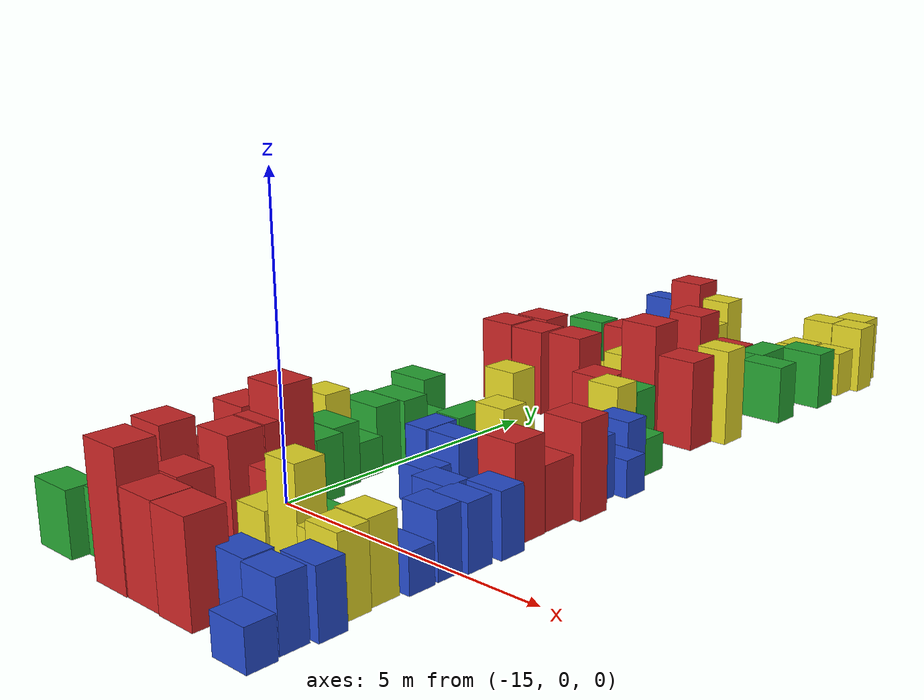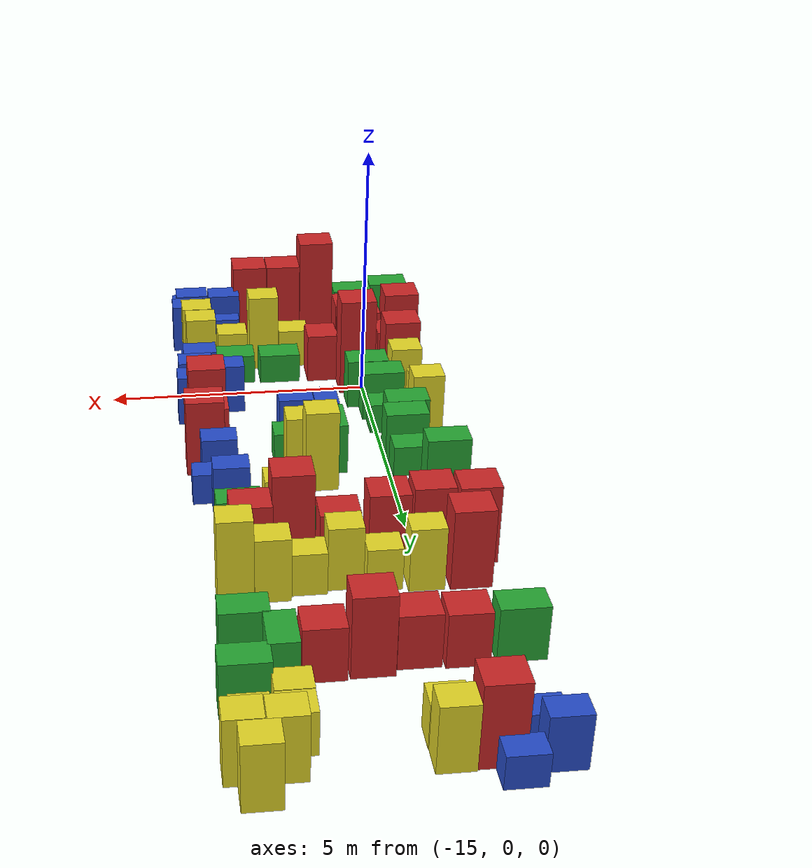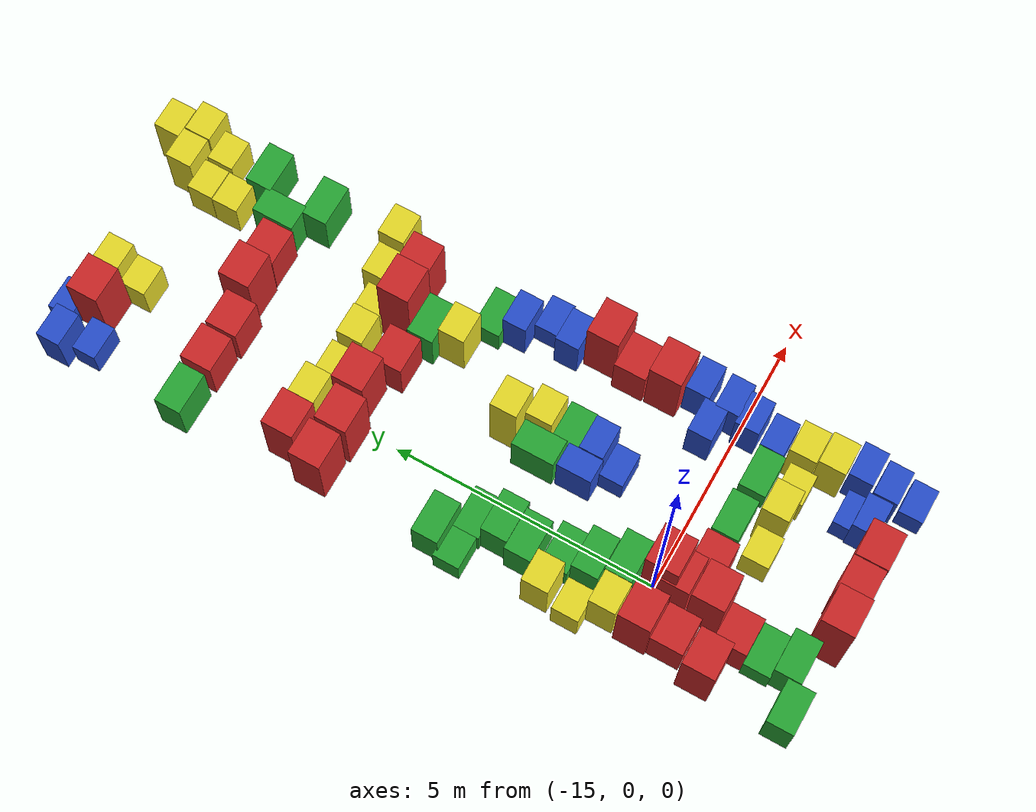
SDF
<?xml version="1.0" encoding="UTF-8"?>
<sdf version="1.4">
  <model name="baggage_group_A">
    <model name="baggage_D_1.0_0">
      <include>
        <uri>model://baggage_D_1.0</uri>
        <pose>-15.952773 -2.921897 0.5 0 0 0</pose>
      </include>
    </model>
    <model name="baggage_D_1.0_1">
      <include>
        <uri>model://baggage_D_1.0</uri>
        <pose>-15.140800 -2.659260 0.5 0 0 0</pose>
      </include>
    </model>
    <model name="baggage_D_0.6_0">
      <include>
        <uri>model://baggage_D_0.6</uri>
        <pose>-15.197688 -2.173482 0.3 0 0 0</pose>
      </include>
    </model>
    <model name="baggage_A_2.0_0">
      <include>
        <uri>model://baggage_A_2.0</uri>
        <pose>-14.3888 -2.985664 1.0 0 0 0</pose>
      </include>
    </model>
    <model name="baggage_A_1.5_0">
      <include>
        <uri>model://baggage_A_1.5</uri>
        <pose>-13.6814 -2.97255 0.75 0 0 0</pose>
      </include>
    </model>
    <model name="baggage_A_1.5_1">
      <include>
        <uri>model://baggage_A_1.5</uri>
        <pose>-12.9672 -2.99066 0.75 0 0 0</pose>
      </include>
    </model>
    <model name="baggage_B_0.6_0">
      <include>
        <uri>model://baggage_B_0.6</uri>
        <pose>-11.6581 -3.23288 0.3 0 0 0</pose>
      </include>
    </model>
    <model name="baggage_B_1.0_0">
      <include>
        <uri>model://baggage_B_1.0</uri>
        <pose>-11.7207 -2.7222 0.5 0 0 0</pose>
      </include>
    </model>
    <model name="baggage_B_1.0_1">
      <include>
        <uri>model://baggage_B_1.0</uri>
        <pose>-12.3958 -2.65895 0.5 0 0 0</pose>
      </include>
    </model>
    <model name="baggage_A_1.5_2">
      <include>
        <uri>model://baggage_A_1.5</uri>
        <pose>-15.9557 -1.37192 0.75 0 0 0</pose>
      </include>
    </model>
    <model name="baggage_A_1.0_0">
      <include>
        <uri>model://baggage_A_1.0</uri>
        <pose>-15.7141 -0.71732 0.5 0 0 0</pose>
      </include>
    </model>
    <model name="baggage_A_1.5_3">
      <include>
        <uri>model://baggage_A_1.5</uri>
        <pose>-15.7621 -0.111141 0.75 0 0 0</pose>
      </include>
    </model>
    <model name="baggage_A_1.5_4">
      <include>
        <uri>model://baggage_A_1.5</uri>
        <pose>-14.902 -0.36223 0.75 0 0 0</pose>
      </include>
    </model>
    <model name="baggage_A_1.5_5">
      <include>
        <uri>model://baggage_A_1.5</uri>
        <pose>-14.8854 -0.995082 0.75 0 0 0</pose>
      </include>
    </model>
    <model name="baggage_A_1.0_1">
      <include>
        <uri>model://baggage_A_1.0</uri>
        <pose>-15.2121 -1.62004 0.5 0 0 0</pose>
      </include>
    </model>
    <model name="baggage_A_2.0_1">
      <include>
        <uri>model://baggage_A_2.0</uri>
        <pose>-14.8718 -0.108549 1.0 0 0 0</pose>
      </include>
    </model>
    <model name="baggage_A_1.0_2">
      <include>
        <uri>model://baggage_A_1.0</uri>
        <pose>-14.2882 -0.683416 0.5 0 0 0</pose>
      </include>
    </model>
    <model name="baggage_B_0.6_1">
      <include>
        <uri>model://baggage_B_0.6</uri>
        <pose>-12.3653 -2.347 0.3 0 0 0</pose>
      </include>
    </model>
    <model name="baggage_B_1.0_2">
      <include>
        <uri>model://baggage_B_1.0</uri>
        <pose>-11.6217 -2.22105 0.5 0 0 0</pose>
      </include>
    </model>
    <model name="baggage_C_1.2_0">
      <include>
        <uri>model://baggage_C_1.2</uri>
        <pose>-11.7735 -1.71632 0.6 0 0 0</pose>
      </include>
    </model>
    <model name="baggage_C_1.2_1">
      <include>
        <uri>model://baggage_C_1.2</uri>
        <pose>-11.8281 -1.20127 0.6 0 0 0</pose>
      </include>
    </model>
    <model name="baggage_C_0.8_0">
      <include>
        <uri>model://baggage_C_0.8</uri>
        <pose>-12.4698 -1.30971 0.4 0 0 0</pose>
      </include>
    </model>
    <model name="baggage_C_1.6_0">
      <include>
        <uri>model://baggage_C_1.6</uri>
        <pose>-13.1083 -1.26847 0.8 0 0 0</pose>
      </include>
    </model>
    <model name="baggage_C_0.8_1">
      <include>
        <uri>model://baggage_C_0.8</uri>
        <pose>-13.721 -1.31855 0.4 0 0 0</pose>
      </include>
    </model>
    <model name="baggage_C_1.2_2">
      <include>
        <uri>model://baggage_C_1.2</uri>
        <pose>-15.7532 0.485614 0.6 0 0 0</pose>
      </include>
    </model>
    <model name="baggage_D_1.0_2">
      <include>
        <uri>model://baggage_D_1.0</uri>
        <pose>-14.9923 0.523276 0.5 0 0 0</pose>
      </include>
    </model>
    <model name="baggage_B_0.6_2">
      <include>
        <uri>model://baggage_B_0.6</uri>
        <pose>-11.732 -0.670798 0.3 0 0 0</pose>
      </include>
    </model>
    <model name="baggage_B_1.0_3">
      <include>
        <uri>model://baggage_B_1.0</uri>
        <pose>-11.7456 -0.151198 0.5 0 0 0</pose>
      </include>
    </model>
    <model name="baggage_B_1.0_4">
      <include>
        <uri>model://baggage_B_1.0</uri>
        <pose>-11.6263 0.282143 0.5 0 0 0</pose>
      </include>
    </model>
    <model name="baggage_D_0.6_1">
      <include>
        <uri>model://baggage_D_0.6</uri>
        <pose>-12.466 -0.703041 0.3 0 0 0</pose>
      </include>
    </model>
    <model name="baggage_D_0.6_2">
      <include>
        <uri>model://baggage_D_0.6</uri>
        <pose>-13.376 -0.65813 0.3 0 0 0</pose>
      </include>
    </model>
    <model name="baggage_B_1.0_5">
      <include>
        <uri>model://baggage_B_1.0</uri>
        <pose>-12.2401 0.487142 0.5 0 0 0</pose>
      </include>
    </model>
    <model name="baggage_B_1.0_6">
      <include>
        <uri>model://baggage_B_1.0</uri>
        <pose>-11.5805 0.867645 0.5 0 0 0</pose>
      </include>
    </model>
    <model name="baggage_D_1.0_3">
      <include>
        <uri>model://baggage_D_1.0</uri>
        <pose>-15.2186 1.03486 0.5 0 0 0</pose>
      </include>
    </model>
    <model name="baggage_D_0.6_3">
      <include>
        <uri>model://baggage_D_0.6</uri>
        <pose>-15.2862 1.55706 0.3 0 0 0</pose>
      </include>
    </model>
    <model name="baggage_C_0.8_2">
      <include>
        <uri>model://baggage_C_0.8</uri>
        <pose>-16.0562 0.989731 0.4 0 0 0</pose>
      </include>
    </model>
    <model name="baggage_C_1.2_3">
      <include>
        <uri>model://baggage_C_1.2</uri>
        <pose>-15.9802 1.60915 0.6 0 0 0</pose>
      </include>
    </model>
    <model name="baggage_B_0.6_3">
      <include>
        <uri>model://baggage_B_0.6</uri>
        <pose>-13.555022 1.446875 0.3 0 0 0</pose>
      </include>
    </model>
    <model name="baggage_B_1.0_7">
      <include>
        <uri>model://baggage_B_1.0</uri>
        <pose>-13.4176 1.92528 0.5 0 0 0</pose>
      </include>
    </model>
    <model name="baggage_B_1.0_8">
      <include>
        <uri>model://baggage_B_1.0</uri>
        <pose>-13.982483 2.001436 0.5 0 0 1.57</pose>
      </include>
    </model>
    <model name="baggage_A_1.5_6">
      <include>
        <uri>model://baggage_A_1.5</uri>
        <pose>-11.7805 1.41002 0.75 0 0 0</pose>
      </include>
    </model>
    <model name="baggage_A_1.0_3">
      <include>
        <uri>model://baggage_A_1.0</uri>
        <pose>-11.796 2.03958 0.5 0 0 0</pose>
      </include>
    </model>
    <model name="baggage_D_0.6_4">
      <include>
        <uri>model://baggage_D_0.6</uri>
        <pose>-13.3434 2.44958 0.3 0 0 0</pose>
      </include>
    </model>
    <model name="baggage_D_1.0_4">
      <include>
        <uri>model://baggage_D_1.0</uri>
        <pose>-13.999511 2.769431 0.5 0 0 -1.57</pose>
      </include>
    </model>
    <model name="baggage_A_1.5_7">
      <include>
        <uri>model://baggage_A_1.5</uri>
        <pose>-11.6674 2.65733 0.75 0 0 0</pose>
      </include>
    </model>
    <model name="baggage_C_1.2_4">
      <include>
        <uri>model://baggage_C_1.2</uri>
        <pose>-13.4172 2.94838 0.6 0 0 0</pose>
      </include>
    </model>
    <model name="baggage_D_1.0_5">
      <include>
        <uri>model://baggage_D_1.0</uri>
        <pose>-15.5016 2.13917 0.5 0 0 0</pose>
      </include>
    </model>
    <model name="baggage_D_1.0_6">
      <include>
        <uri>model://baggage_D_1.0</uri>
        <pose>-15.399 2.6424 0.5 0 0 0</pose>
      </include>
    </model>
    <model name="baggage_A_1.5_8">
      <include>
        <uri>model://baggage_A_1.5</uri>
        <pose>-15.760444 6.594052 0.75 0 0 0</pose>
      </include>
    </model>
    <model name="baggage_B_1.0_9">
      <include>
        <uri>model://baggage_B_1.0</uri>
        <pose>-11.8901 3.21914 0.5 0 0 0</pose>
      </include>
    </model>
    <model name="baggage_B_0.6_4">
      <include>
        <uri>model://baggage_B_0.6</uri>
        <pose>-11.6939 3.71424 0.3 0 0 0</pose>
      </include>
    </model>
    <model name="baggage_B_1.0_10">
      <include>
        <uri>model://baggage_B_1.0</uri>
        <pose>-12.0327 4.17077 0.5 0 0 0</pose>
      </include>
    </model>
    <model name="baggage_C_1.2_5">
      <include>
        <uri>model://baggage_C_1.2</uri>
        <pose>-12.830246 4.97338 0.6 0 0 0</pose>
      </include>
    </model>
    <model name="baggage_D_0.6_5">
      <include>
        <uri>model://baggage_D_0.6</uri>
        <pose>-12.122494 4.624811 0.3 0 0 0</pose>
      </include>
    </model>
    <model name="baggage_D_1.0_7">
      <include>
        <uri>model://baggage_D_1.0</uri>
        <pose>-12.929233 5.483276 0.5 0 0 0</pose>
      </include>
    </model>
    <model name="baggage_C_1.6_1">
      <include>
        <uri>model://baggage_C_1.6</uri>
        <pose>-13.708101 3.470206 0.8 0 0 0</pose>
      </include>
    </model>
    <model name="baggage_B_0.6_5">
      <include>
        <uri>model://baggage_B_0.6</uri>
        <pose>-15.5356 11.2582 0.3 0 0 0</pose>
      </include>
    </model>
    <model name="baggage_B_1.0_11">
      <include>
        <uri>model://baggage_B_1.0</uri>
        <pose>-16.1787 10.9888 0.5 0 0 0</pose>
      </include>
    </model>
    <model name="baggage_B_0.6_6">
      <include>
        <uri>model://baggage_B_0.6</uri>
        <pose>-15.982618 10.468168 0.3 0 0 0</pose>
      </include>
    </model>
    <model name="baggage_D_1.0_8">
      <include>
        <uri>model://baggage_D_1.0</uri>
        <pose>-16.134039 8.550429 0.5 0 0 0</pose>
      </include>
    </model>
    <model name="baggage_A_1.5_9">
      <include>
        <uri>model://baggage_A_1.5</uri>
        <pose>-15.2946 10.7566 0.75 0 0 0</pose>
      </include>
    </model>
    <model name="baggage_C_1.2_6">
      <include>
        <uri>model://baggage_C_1.2</uri>
        <pose>-14.6437 10.8336 0.6 0 0 0</pose>
      </include>
    </model>
    <model name="baggage_C_0.8_3">
      <include>
        <uri>model://baggage_C_0.8</uri>
        <pose>-14.6345 10.3232 0.4 0 0 0</pose>
      </include>
    </model>
    <model name="baggage_C_1.2_7">
      <include>
        <uri>model://baggage_C_1.2</uri>
        <pose>-11.8892 11.2923 0.6 0 0 0</pose>
      </include>
    </model>
    <model name="baggage_D_1.0_9">
      <include>
        <uri>model://baggage_D_1.0</uri>
        <pose>-11.8235 9.39654 0.5 0 0 0</pose>
      </include>
    </model>
    <model name="baggage_C_1.2_8">
      <include>
        <uri>model://baggage_C_1.2</uri>
        <pose>-11.6823 10.7803 0.6 0 0 0</pose>
      </include>
    </model>
    <model name="baggage_C_0.8_4">
      <include>
        <uri>model://baggage_C_0.8</uri>
        <pose>-11.8284 10.2777 0.4 0 0 0</pose>
      </include>
    </model>
    <model name="baggage_C_1.2_9">
      <include>
        <uri>model://baggage_C_1.2</uri>
        <pose>-12.2968 10.7942 0.6 0 0 0</pose>
      </include>
    </model>
    <model name="baggage_C_0.8_5">
      <include>
        <uri>model://baggage_C_0.8</uri>
        <pose>-12.4871 10.2856 0.4 0 0 0</pose>
      </include>
    </model>
    <model name="baggage_C_0.8_6">
      <include>
        <uri>model://baggage_C_0.8</uri>
        <pose>-12.4953 9.77218 0.4 0 0 0</pose>
      </include>
    </model>
    <model name="baggage_A_1.0_4">
      <include>
        <uri>model://baggage_A_1.0</uri>
        <pose>-14.5414 8.51247 0.5 0 0 0</pose>
      </include>
    </model>
    <model name="baggage_A_1.5_10">
      <include>
        <uri>model://baggage_A_1.5</uri>
        <pose>-13.8096 8.64829 0.75 0 0 0</pose>
      </include>
    </model>
    <model name="baggage_A_1.0_5">
      <include>
        <uri>model://baggage_A_1.0</uri>
        <pose>-13.0667 8.67794 0.5 0 0 0</pose>
      </include>
    </model>
    <model name="baggage_D_1.0_10">
      <include>
        <uri>model://baggage_D_1.0</uri>
        <pose>-12.428078 8.832895 0.5 0 0 -1.57</pose>
      </include>
    </model>
    <model name="baggage_D_1.0_11">
      <include>
        <uri>model://baggage_D_1.0</uri>
        <pose>-11.9091 8.21599 0.5 0 0 0</pose>
      </include>
    </model>
    <model name="baggage_A_1.5_11">
      <include>
        <uri>model://baggage_A_1.5</uri>
        <pose>-15.2514 5.87077 0.75 0 0 0</pose>
      </include>
    </model>
    <model name="baggage_A_1.5_12">
      <include>
        <uri>model://baggage_A_1.5</uri>
        <pose>-14.486 5.99908 0.75 0 0 0</pose>
      </include>
    </model>
    <model name="baggage_A_1.0_6">
      <include>
        <uri>model://baggage_A_1.0</uri>
        <pose>-13.7115 5.72892 0.5 0 0 0</pose>
      </include>
    </model>
    <model name="baggage_A_2.0_2">
      <include>
        <uri>model://baggage_A_2.0</uri>
        <pose>-12.8917 6.0254 1.0 0 0 0</pose>
      </include>
    </model>
    <model name="baggage_A_1.5_13">
      <include>
        <uri>model://baggage_A_1.5</uri>
        <pose>-12.200442 6.120517 0.75 0 0 0</pose>
      </include>
    </model>
    <model name="baggage_D_0.6_6">
      <include>
        <uri>model://baggage_D_0.6</uri>
        <pose>-16.0868 3.16804 0.3 0 0 0</pose>
      </include>
    </model>
    <model name="baggage_D_0.6_7">
      <include>
        <uri>model://baggage_D_0.6</uri>
        <pose>-15.4684 3.13344 0.3 0 0 0</pose>
      </include>
    </model>
    <model name="baggage_D_1.0_12">
      <include>
        <uri>model://baggage_D_1.0</uri>
        <pose>-15.9791 3.62983 0.5 0 0 0</pose>
      </include>
    </model>
    <model name="baggage_A_1.5_14">
      <include>
        <uri>model://baggage_A_1.5</uri>
        <pose>-16.0040 5.924286 0.75 0 0 0</pose>
      </include>
    </model>
    <model name="baggage_C_1.2_10">
      <include>
        <uri>model://baggage_C_1.2</uri>
        <pose>-15.0236 6.62739 0.6 0 0 0</pose>
      </include>
    </model>
    <model name="baggage_C_0.8_7">
      <include>
        <uri>model://baggage_C_0.8</uri>
        <pose>-14.3387 6.54913 0.4 0 0 0</pose>
      </include>
    </model>
    <model name="baggage_C_1.2_11">
      <include>
        <uri>model://baggage_C_1.2</uri>
        <pose>-13.7053 6.46809 0.6 0 0 0</pose>
      </include>
    </model>
    <model name="baggage_C_0.8_8">
      <include>
        <uri>model://baggage_C_0.8</uri>
        <pose>-13.0994 6.55326 0.4 0 0 0</pose>
      </include>
    </model>
    <model name="baggage_C_1.2_12">
      <include>
        <uri>model://baggage_C_1.2</uri>
        <pose>-12.497204 6.674532 0.6 0 0 0</pose>
      </include>
    </model>
    <model name="baggage_C_1.6_2">
      <include>
        <uri>model://baggage_C_1.6</uri>
        <pose>-11.89386 6.684864 0.8 0 0 0</pose>
      </include>
    </model>
    <model name="baggage_A_1.0_7">
      <include>
        <uri>model://baggage_A_1.0</uri>
        <pose>-15.287872 8.553086 0.5 0 0 0</pose>
      </include>
    </model>
  </model>
</sdf>

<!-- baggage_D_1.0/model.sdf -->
<sdf version='1.4'>
  <model name="baggage_D_1.0">
      <static>true</static>
      <link name="link">
         <collision name="collision">
            <geometry>
               <box>
                  <size>0.8 0.5 1.0</size>
               </box>
            </geometry>
         </collision>
         <visual name="visual">
            <cast_shadows>false</cast_shadows>
            <geometry>
               <box>
                  <size>0.8 0.5 1.0</size>
               </box>
            </geometry>
            <material>
               <script>
                  <uri>file://media/materials/scripts/gazebo.material</uri>
                  <name>Gazebo/Green</name>
               </script>
            </material>
         </visual>
      </link>
  </model>
</sdf>

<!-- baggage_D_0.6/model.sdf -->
<sdf version='1.4'>
  <model name="baggage_D_0.6">
      <static>true</static>
      <link name="link">
         <collision name="collision">
            <geometry>
               <box>
                  <size>0.8 0.5 0.6</size>
               </box>
            </geometry>
         </collision>
         <visual name="visual">
            <cast_shadows>false</cast_shadows>
            <geometry>
               <box>
                  <size>0.8 0.5 0.6</size>
               </box>
            </geometry>
            <material>
               <script>
                  <uri>file://media/materials/scripts/gazebo.material</uri>
                  <name>Gazebo/Green</name>
               </script>
            </material>
         </visual>
      </link>
  </model>
</sdf>

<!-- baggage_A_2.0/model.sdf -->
<sdf version='1.4'>
  <model name="baggage_A_2.0">
      <static>true</static>
      <link name="link">
         <collision name="collision">
            <geometry>
               <box>
                  <size>0.7 0.6 2.0</size>
               </box>
            </geometry>
         </collision>
         <visual name="visual">
            <cast_shadows>false</cast_shadows>
            <geometry>
               <box>
                  <size>0.7 0.6 2.0</size>
               </box>
            </geometry>
            <material>
               <script>
                  <uri>file://media/materials/scripts/gazebo.material</uri>
                  <name>Gazebo/Red</name>
               </script>
            </material>
         </visual>
      </link>
  </model>
</sdf>

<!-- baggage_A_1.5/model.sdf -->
<sdf version='1.4'>
  <model name="baggage_A_1.5">
      <static>true</static>
      <link name="link">
         <collision name="collision">
            <geometry>
               <box>
                  <size>0.7 0.6 1.5</size>
               </box>
            </geometry>
         </collision>
         <visual name="visual">
            <cast_shadows>false</cast_shadows>
            <geometry>
               <box>
                  <size>0.7 0.6 1.5</size>
               </box>
            </geometry>
            <material>
               <script>
                  <uri>file://media/materials/scripts/gazebo.material</uri>
                  <name>Gazebo/Red</name>
               </script>
            </material>
         </visual>
      </link>
  </model>
</sdf>

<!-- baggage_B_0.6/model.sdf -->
<sdf version='1.4'>
  <model name="baggage_B_0.6">
      <static>true</static>
      <link name="link">
         <collision name="collision">
            <geometry>
               <box>
                  <size>0.65 0.45 0.6</size>
               </box>
            </geometry>
         </collision>
         <visual name="visual">
            <cast_shadows>false</cast_shadows>
            <geometry>
               <box>
                  <size>0.65 0.45 0.6</size>
               </box>
            </geometry>
            <material>
               <script>
                  <uri>file://media/materials/scripts/gazebo.material</uri>
                  <name>Gazebo/Blue</name>
               </script>
            </material>
         </visual>
      </link>
  </model>
</sdf>

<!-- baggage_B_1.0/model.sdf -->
<sdf version='1.4'>
  <model name="baggage_B_1.0">
      <static>true</static>
      <link name="link">
         <collision name="collision">
            <geometry>
               <box>
                  <size>0.65 0.45 1.0</size>
               </box>
            </geometry>
         </collision>
         <visual name="visual">
            <cast_shadows>false</cast_shadows>
            <geometry>
               <box>
                  <size>0.65 0.45 1.0</size>
               </box>
            </geometry>
            <material>
               <script>
                  <uri>file://media/materials/scripts/gazebo.material</uri>
                  <name>Gazebo/Blue</name>
               </script>
            </material>
         </visual>
      </link>
  </model>
</sdf>

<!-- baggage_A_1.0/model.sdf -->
<sdf version='1.4'>
  <model name="baggage_A_1.0">
      <static>true</static>
      <link name="link">
         <collision name="collision">
            <geometry>
               <box>
                  <size>0.7 0.6 1.0</size>
               </box>
            </geometry>
         </collision>
         <visual name="visual">
            <cast_shadows>false</cast_shadows>
            <geometry>
               <box>
                  <size>0.7 0.6 1.0</size>
               </box>
            </geometry>
            <material>
               <script>
                  <uri>file://media/materials/scripts/gazebo.material</uri>
                  <name>Gazebo/Red</name>
               </script>
            </material>
         </visual>
      </link>
  </model>
</sdf>

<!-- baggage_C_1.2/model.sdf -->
<sdf version='1.4'>
  <model name="baggage_C_1.2">
      <static>true</static>
      <link name="link">
         <collision name="collision">
            <geometry>
               <box>
                  <size>0.6 0.5 1.2</size>
               </box>
            </geometry>
         </collision>
         <visual name="visual">
            <cast_shadows>false</cast_shadows>
            <geometry>
               <box>
                  <size>0.6 0.5 1.2</size>
               </box>
            </geometry>
            <material>
               <script>
                  <uri>file://media/materials/scripts/gazebo.material</uri>
                  <name>Gazebo/Yellow</name>
               </script>
            </material>
         </visual>
      </link>
  </model>
</sdf>

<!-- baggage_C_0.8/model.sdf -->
<sdf version='1.4'>
  <model name="baggage_C_0.8">
      <static>true</static>
      <link name="link">
         <collision name="collision">
            <geometry>
               <box>
                  <size>0.6 0.5 0.8</size>
               </box>
            </geometry>
         </collision>
         <visual name="visual">
            <cast_shadows>false</cast_shadows>
            <geometry>
               <box>
                  <size>0.6 0.5 0.8</size>
               </box>
            </geometry>
            <material>
               <script>
                  <uri>file://media/materials/scripts/gazebo.material</uri>
                  <name>Gazebo/Yellow</name>
               </script>
            </material>
         </visual>
      </link>
  </model>
</sdf>

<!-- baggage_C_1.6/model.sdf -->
<sdf version='1.4'>
  <model name="baggage_C_1.6">
      <static>true</static>
      <link name="link">
         <collision name="collision">
            <geometry>
               <box>
                  <size>0.6 0.5 1.6</size>
               </box>
            </geometry>
         </collision>
         <visual name="visual">
            <cast_shadows>false</cast_shadows>
            <geometry>
               <box>
                  <size>0.6 0.5 1.6</size>
               </box>
            </geometry>
            <material>
               <script>
                  <uri>file://media/materials/scripts/gazebo.material</uri>
                  <name>Gazebo/Yellow</name>
               </script>
            </material>
         </visual>
      </link>
  </model>
</sdf>
